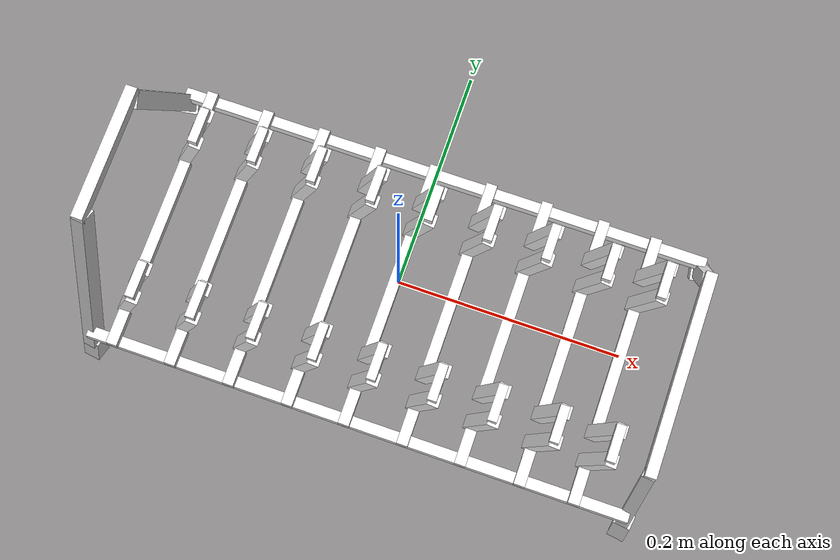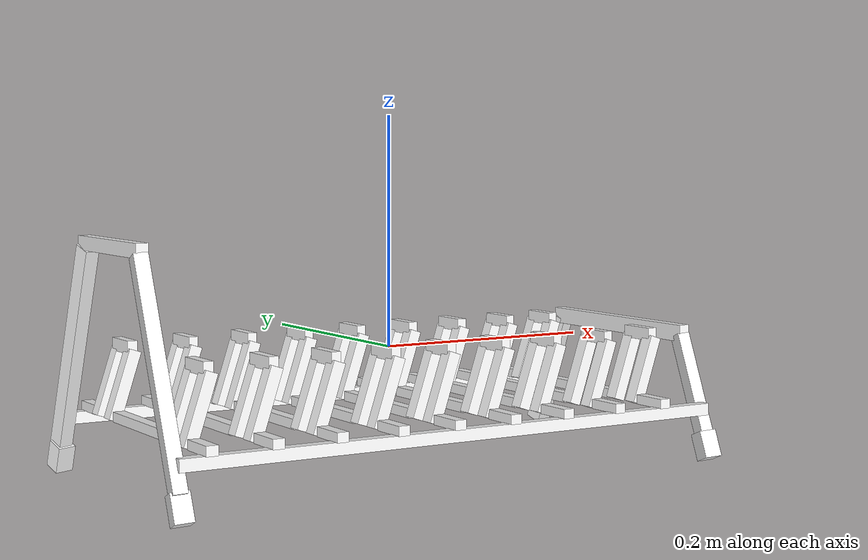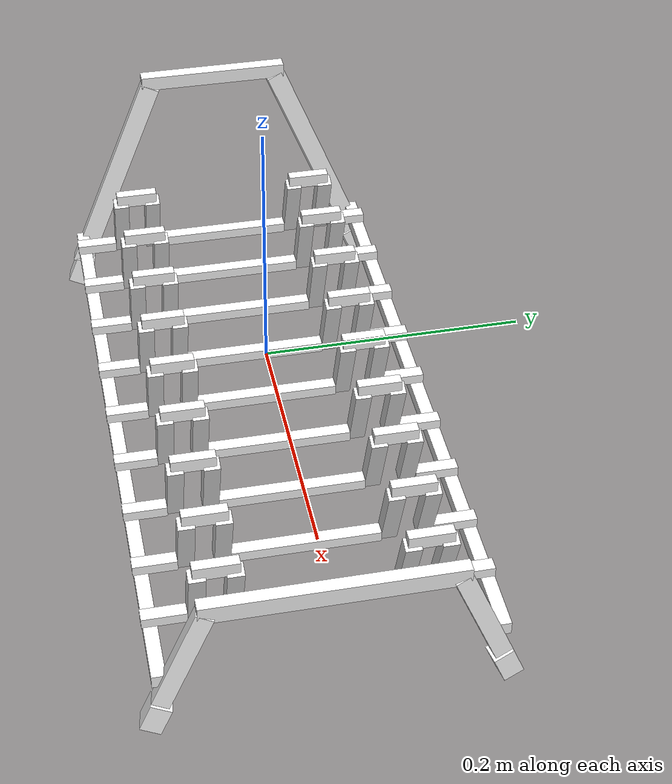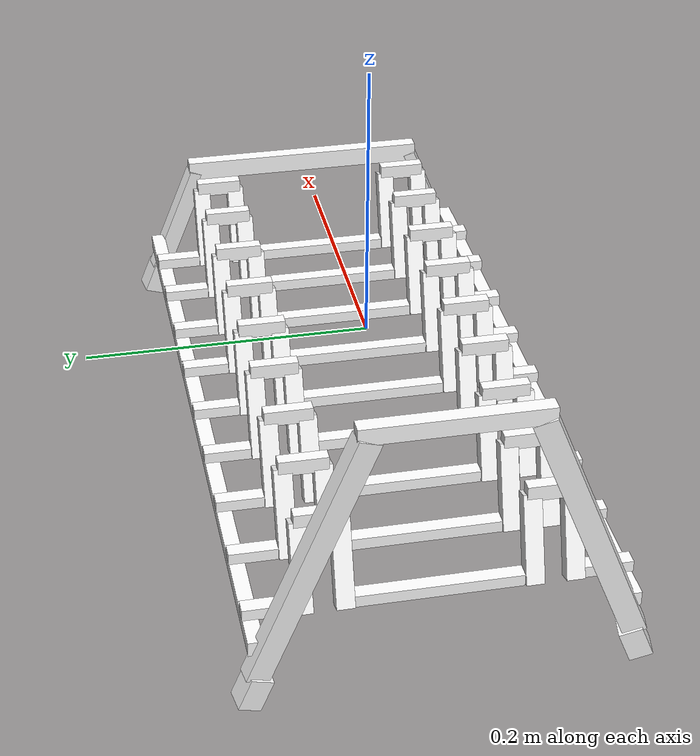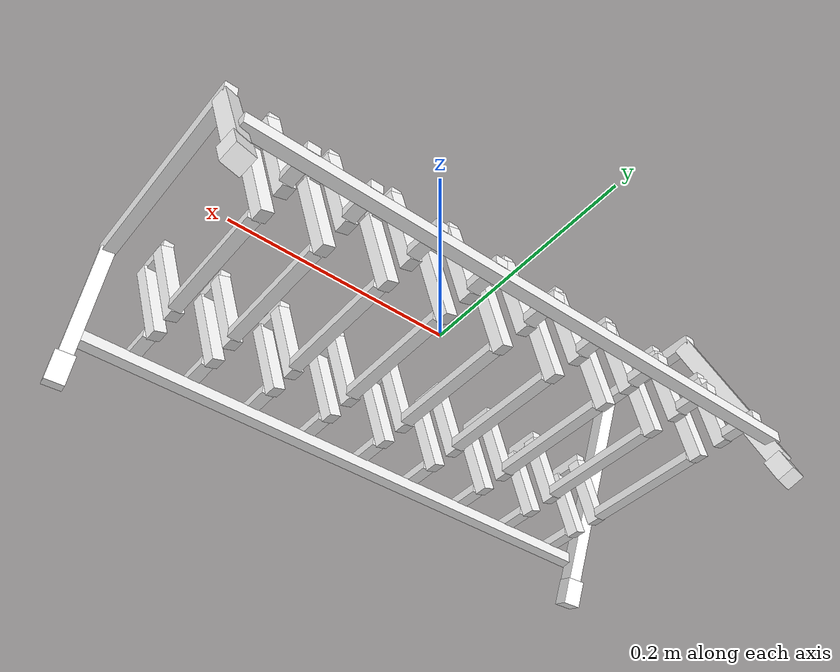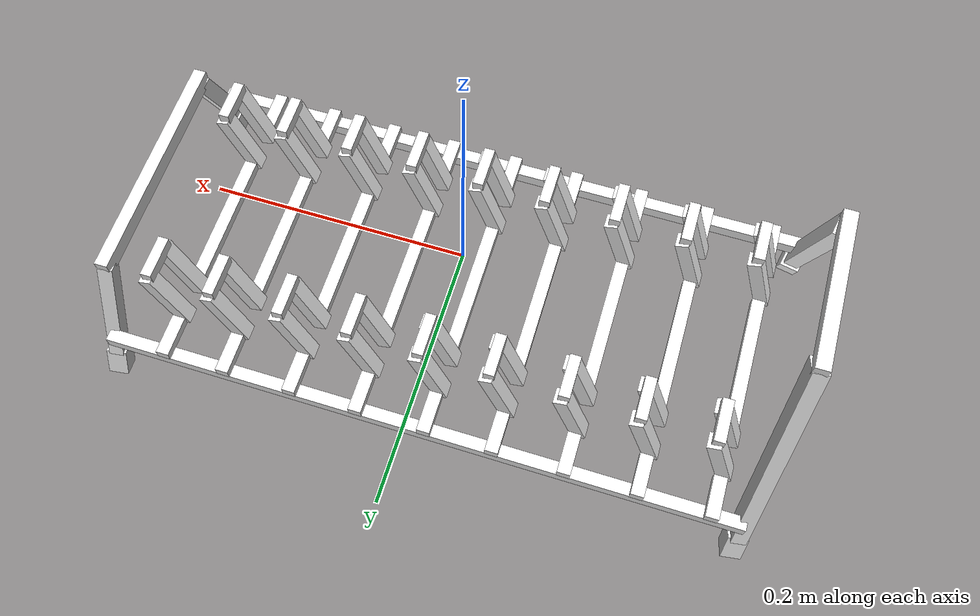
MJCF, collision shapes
<?xml version='1.0' encoding='utf-8'?>
<mujoco model="model">
  <option timestep="0.002" gravity="0.0 0.0 -9.81" />
  <compiler angle="radian" />
  <asset>
    <mesh file="visual/DishRack030.obj" name="DishRack030_vis" />
    <texture file="visual/T_BC001.png" name="DishRack030_material" type="2d" />
    <material name="DishRack030_material" rgba="1 1 1 1.0" texture="DishRack030_material" shininess="0.4472135901451111" specular="0.3103448502657381" />
  </asset>
  <default>
    <default class="visual">
      <geom conaffinity="0" contype="0" group="1" type="mesh" />
    </default>
    <default class="collision">
      <geom group="0" rgba="1 1 1 0.25" density="1.0" solref="0.004 1" solimp="0.998 0.998 0.001" />
    </default>
    <default class="spawn">
      <geom group="0" rgba="1 1 1 0.5" contype="0" conaffinity="0" />
      <site group="0" rgba="1 1 1 0.5" />
    </default>
    <default class="region">
      <geom group="1" conaffinity="0" contype="0" rgba="0 1 0 0" mass="0" />
    </default>
  </default>
  <worldbody>
    <body>
      <body name="object">
        <geom mesh="DishRack030_vis" type="mesh" solimp="0.998 0.998 0.001" solref="0.001 1" friction="0.95 0.3 0.1" class="visual" material="DishRack030_material" />
        <geom type="box" pos="-0.25378570 0.12518905 -0.09148403" size="0.007916887290775776 0.007985206320881844 0.0119932284578681" quat="0.9781383872032166 0.19029957056045532 -0.01601365953683853 0.0823102816939354" class="collision" />
        <geom type="box" pos="-0.25422218 0.08863600 0.00502603" size="0.005984391085803509 0.008014027960598469 0.09362516552209854" quat="0.9781383872032166 0.19029957056045532 -0.01601365953683853 0.0823102816939354" class="collision" />
        <geom type="box" pos="-0.25434777 0.00054217 0.09585953" size="0.005172938574105501 0.060339994728565216 0.005884864833205938" quat="1.0 0.0 0.0 0.0" class="collision" />
        <geom type="box" pos="-0.00001669 0.12246659 -0.05889758" size="0.2549675703048706 0.005172943230718374 0.005196853075176477" quat="1.0 0.0 0.0 0.0" class="collision" />
        <geom type="box" pos="-0.22845045 0.11150206 -0.04992009" size="0.005172938574105501 0.016451986506581306 0.004123777616769075" quat="1.0 0.0 0.0 0.0" class="collision" />
        <geom type="box" pos="-0.22845045 0.00048913 -0.05001092" size="0.005172938574105501 0.05544568598270416 0.004214602056890726" quat="1.0 0.0 0.0 0.0" class="collision" />
        <geom type="box" pos="-0.21435845 0.07522217 0.00659163" size="0.004249385558068752 0.016727598384022713 0.005482289008796215" quat="1.0 0.0 0.0 0.0" class="collision" />
        <geom type="box" pos="-0.22208646 0.08884854 -0.02489956" size="0.005382102448493242 0.0060995458625257015 0.030548080801963806" quat="0.9872633218765259 0.0 0.1590948849916458 0.0" class="collision" />
        <geom type="box" pos="-0.00001669 -0.12080890 -0.05889758" size="0.2549675703048706 0.005172943230718374 0.005196853075176477" quat="1.0 0.0 0.0 0.0" class="collision" />
        <geom type="box" pos="-0.22208646 0.06214127 -0.02489956" size="0.005382102448493242 0.0060995458625257015 0.030548080801963806" quat="0.9872633218765259 0.0 0.1590948849916458 0.0" class="collision" />
        <geom type="box" pos="-0.25422218 -0.08782185 0.00502603" size="0.005984391085803509 0.008014027960598469 0.09362516552209854" quat="0.9781383872032166 -0.19029957056045532 -0.016013650223612785 -0.0823102742433548" class="collision" />
        <geom type="box" pos="-0.25378570 -0.12437491 -0.09148403" size="0.007916887290775776 0.007985206320881844 0.0119932284578681" quat="0.9781383872032166 -0.19029955565929413 -0.016013650223612785 -0.0823102816939354" class="collision" />
        <geom type="box" pos="0.25458512 -0.12437491 -0.09148403" size="0.007916887290775776 0.007985206320881844 0.0119932284578681" quat="0.9781383872032166 -0.19029955565929413 -0.016013650223612785 -0.0823102816939354" class="collision" />
        <geom type="box" pos="0.25414860 -0.10434328 -0.03941492" size="0.005759585183113813 0.006687732879072428 0.04623163118958473" quat="0.9781383872032166 -0.19029957056045532 -0.016013650223612785 -0.0823102742433548" class="collision" />
        <geom type="box" pos="0.25402302 0.00084284 0.00550140" size="0.005172938574105501 0.09368351846933365 0.007361079100519419" quat="1.0 0.0 0.0 0.0" class="collision" />
        <geom type="box" pos="0.25414860 0.10545810 -0.03941493" size="0.005806167609989643 0.006962559651583433 0.04611889645457268" quat="0.9781383872032166 0.19029957056045532 -0.01601365953683853 0.0823102816939354" class="collision" />
        <geom type="box" pos="0.25458512 0.12518905 -0.09148403" size="0.007916887290775776 0.007985206320881844 0.0119932284578681" quat="0.9781383872032166 0.19029957056045532 -0.01601365953683853 0.0823102816939354" class="collision" />
        <geom type="box" pos="-0.22208646 -0.06110779 -0.02489956" size="0.005382102448493242 0.0060995458625257015 0.030548080801963806" quat="0.9872633218765259 0.0 0.1590948849916458 0.0" class="collision" />
        <geom type="box" pos="-0.22208646 -0.08781506 -0.02489956" size="0.005382102448493242 0.0060995458625257015 0.030548080801963806" quat="0.9872633218765259 0.0 0.1590948849916458 0.0" class="collision" />
        <geom type="box" pos="-0.21435845 -0.07418868 0.00659163" size="0.004249385558068752 0.016727598384022713 0.005482289008796215" quat="1.0 0.0 0.0 0.0" class="collision" />
        <geom type="box" pos="-0.22845045 -0.11046857 -0.04992009" size="0.005172938574105501 0.016451986506581306 0.004123777616769075" quat="1.0 0.0 0.0 0.0" class="collision" />
        <geom type="box" pos="-0.17276287 -0.11046857 -0.04992009" size="0.005172938574105501 0.016451986506581306 0.004123777616769075" quat="1.0 0.0 0.0 0.0" class="collision" />
        <geom type="box" pos="-0.15867087 -0.07418868 0.00659163" size="0.004249385558068752 0.016727598384022713 0.005482289008796215" quat="1.0 0.0 0.0 0.0" class="collision" />
        <geom type="box" pos="-0.16639888 -0.08781506 -0.02489956" size="0.005382102448493242 0.0060995458625257015 0.030548080801963806" quat="0.9872633218765259 0.0 0.1590948849916458 0.0" class="collision" />
        <geom type="box" pos="-0.16639888 -0.06110779 -0.02489956" size="0.005382102448493242 0.0060995458625257015 0.030548080801963806" quat="0.9872633218765259 0.0 0.1590948849916458 0.0" class="collision" />
        <geom type="box" pos="-0.16639888 0.06214127 -0.02489956" size="0.005382102448493242 0.0060995458625257015 0.030548080801963806" quat="0.9872633218765259 0.0 0.1590948849916458 0.0" class="collision" />
        <geom type="box" pos="-0.16639888 0.08884854 -0.02489956" size="0.005382102448493242 0.0060995458625257015 0.030548080801963806" quat="0.9872633218765259 0.0 0.1590948849916458 0.0" class="collision" />
        <geom type="box" pos="-0.15867087 0.07522217 0.00659163" size="0.004249385558068752 0.016727598384022713 0.005482289008796215" quat="1.0 0.0 0.0 0.0" class="collision" />
        <geom type="box" pos="-0.17276287 0.00048913 -0.05001092" size="0.005172938574105501 0.05544568598270416 0.004214602056890726" quat="1.0 0.0 0.0 0.0" class="collision" />
        <geom type="box" pos="-0.17276287 0.11150206 -0.04992009" size="0.005172938574105501 0.016451986506581306 0.004123777616769075" quat="1.0 0.0 0.0 0.0" class="collision" />
        <geom type="box" pos="-0.06136299 0.11150206 -0.04992009" size="0.005172938574105501 0.016451986506581306 0.004123777616769075" quat="1.0 0.0 0.0 0.0" class="collision" />
        <geom type="box" pos="-0.06136300 0.00048913 -0.05001092" size="0.005172938574105501 0.05544568598270416 0.004214602056890726" quat="1.0 0.0 0.0 0.0" class="collision" />
        <geom type="box" pos="-0.04727098 0.07522217 0.00659163" size="0.004249385558068752 0.016727598384022713 0.005482289008796215" quat="1.0 0.0 0.0 0.0" class="collision" />
        <geom type="box" pos="-0.05499901 0.08884854 -0.02489956" size="0.005382102448493242 0.0060995458625257015 0.030548080801963806" quat="0.9872633218765259 0.0 0.1590948849916458 0.0" class="collision" />
        <geom type="box" pos="-0.05499901 0.06214127 -0.02489956" size="0.005382102448493242 0.0060995458625257015 0.030548080801963806" quat="0.9872633218765259 0.0 0.1590948849916458 0.0" class="collision" />
        <geom type="box" pos="-0.05499901 -0.06110779 -0.02489956" size="0.005382102448493242 0.0060995458625257015 0.030548080801963806" quat="0.9872633218765259 0.0 0.1590948849916458 0.0" class="collision" />
        <geom type="box" pos="-0.05499901 -0.08781506 -0.02489956" size="0.005382102448493242 0.0060995458625257015 0.030548080801963806" quat="0.9872633218765259 0.0 0.1590948849916458 0.0" class="collision" />
        <geom type="box" pos="-0.04727098 -0.07418868 0.00659163" size="0.004249385558068752 0.016727598384022713 0.005482289008796215" quat="1.0 0.0 0.0 0.0" class="collision" />
        <geom type="box" pos="-0.06136299 -0.11046857 -0.04992009" size="0.005172938574105501 0.016451986506581306 0.004123777616769075" quat="1.0 0.0 0.0 0.0" class="collision" />
        <geom type="box" pos="-0.11705057 -0.11046857 -0.04992009" size="0.005172938574105501 0.016451986506581306 0.004123777616769075" quat="1.0 0.0 0.0 0.0" class="collision" />
        <geom type="box" pos="-0.10295856 -0.07418868 0.00659163" size="0.004249385558068752 0.016727598384022713 0.005482289008796215" quat="1.0 0.0 0.0 0.0" class="collision" />
        <geom type="box" pos="-0.11068659 -0.08781506 -0.02489956" size="0.005382102448493242 0.0060995458625257015 0.030548080801963806" quat="0.9872633218765259 0.0 0.1590948849916458 0.0" class="collision" />
        <geom type="box" pos="-0.11068659 -0.06110779 -0.02489956" size="0.005382102448493242 0.0060995458625257015 0.030548080801963806" quat="0.9872633218765259 0.0 0.1590948849916458 0.0" class="collision" />
        <geom type="box" pos="-0.11068659 0.06214127 -0.02489956" size="0.005382102448493242 0.0060995458625257015 0.030548080801963806" quat="0.9872633218765259 0.0 0.1590948849916458 0.0" class="collision" />
        <geom type="box" pos="-0.11068659 0.08884854 -0.02489956" size="0.005382102448493242 0.0060995458625257015 0.030548080801963806" quat="0.9872633218765259 0.0 0.1590948849916458 0.0" class="collision" />
        <geom type="box" pos="-0.10295856 0.07522217 0.00659163" size="0.004249385558068752 0.016727598384022713 0.005482289008796215" quat="1.0 0.0 0.0 0.0" class="collision" />
        <geom type="box" pos="-0.11705057 0.00048913 -0.05001092" size="0.005172938574105501 0.05544568598270416 0.004214602056890726" quat="1.0 0.0 0.0 0.0" class="collision" />
        <geom type="box" pos="-0.11705057 0.11150206 -0.04992009" size="0.005172938574105501 0.016451986506581306 0.004123777616769075" quat="1.0 0.0 0.0 0.0" class="collision" />
        <geom type="box" pos="0.04681066 0.11150206 -0.04992009" size="0.005172938574105501 0.016451986506581306 0.004123777616769075" quat="1.0 0.0 0.0 0.0" class="collision" />
        <geom type="box" pos="0.04681066 0.00048913 -0.05001092" size="0.005172938574105501 0.05544568598270416 0.004214602056890726" quat="1.0 0.0 0.0 0.0" class="collision" />
        <geom type="box" pos="0.06090267 0.07522217 0.00659163" size="0.004249385558068752 0.016727598384022713 0.005482289008796215" quat="1.0 0.0 0.0 0.0" class="collision" />
        <geom type="box" pos="0.05317465 0.08884854 -0.02489956" size="0.005382102448493242 0.0060995458625257015 0.030548080801963806" quat="0.9872633218765259 0.0 0.1590948849916458 0.0" class="collision" />
        <geom type="box" pos="0.05317465 0.06214127 -0.02489956" size="0.005382102448493242 0.0060995458625257015 0.030548080801963806" quat="0.9872633218765259 0.0 0.1590948849916458 0.0" class="collision" />
        <geom type="box" pos="0.05317465 -0.06110779 -0.02489956" size="0.005382102448493242 0.0060995458625257015 0.030548080801963806" quat="0.9872633218765259 0.0 0.1590948849916458 0.0" class="collision" />
        <geom type="box" pos="0.05317465 -0.08781506 -0.02489956" size="0.005382102448493242 0.0060995458625257015 0.030548080801963806" quat="0.9872633218765259 0.0 0.1590948849916458 0.0" class="collision" />
        <geom type="box" pos="0.06090267 -0.07418868 0.00659163" size="0.004249385558068752 0.016727598384022713 0.005482289008796215" quat="1.0 0.0 0.0 0.0" class="collision" />
        <geom type="box" pos="0.04681066 -0.11046857 -0.04992009" size="0.005172938574105501 0.016451986506581306 0.004123777616769075" quat="1.0 0.0 0.0 0.0" class="collision" />
        <geom type="box" pos="-0.00784314 -0.11046857 -0.04992009" size="0.005172938574105501 0.016451986506581306 0.004123777616769075" quat="1.0 0.0 0.0 0.0" class="collision" />
        <geom type="box" pos="0.00624887 -0.07418868 0.00659163" size="0.004249385558068752 0.016727598384022713 0.005482289008796215" quat="1.0 0.0 0.0 0.0" class="collision" />
        <geom type="box" pos="-0.00147915 -0.08781506 -0.02489956" size="0.005382102448493242 0.0060995458625257015 0.030548080801963806" quat="0.9872633218765259 0.0 0.1590948849916458 0.0" class="collision" />
        <geom type="box" pos="-0.00147915 -0.06110779 -0.02489956" size="0.005382102448493242 0.0060995458625257015 0.030548080801963806" quat="0.9872633218765259 0.0 0.1590948849916458 0.0" class="collision" />
        <geom type="box" pos="-0.00147915 0.06214127 -0.02489956" size="0.005382102448493242 0.0060995458625257015 0.030548080801963806" quat="0.9872633218765259 0.0 0.1590948849916458 0.0" class="collision" />
        <geom type="box" pos="-0.00147915 0.08884854 -0.02489956" size="0.005382102448493242 0.0060995458625257015 0.030548080801963806" quat="0.9872633218765259 0.0 0.1590948849916458 0.0" class="collision" />
        <geom type="box" pos="0.00624887 0.07522217 0.00659163" size="0.004249385558068752 0.016727598384022713 0.005482289008796215" quat="1.0 0.0 0.0 0.0" class="collision" />
        <geom type="box" pos="-0.00784314 0.00048913 -0.05001092" size="0.005172938574105501 0.05544568598270416 0.004214602056890726" quat="1.0 0.0 0.0 0.0" class="collision" />
        <geom type="box" pos="-0.00784314 0.11150206 -0.04992009" size="0.005172938574105501 0.016451986506581306 0.004123777616769075" quat="1.0 0.0 0.0 0.0" class="collision" />
        <geom type="box" pos="0.10049462 0.11150206 -0.04992009" size="0.005172938574105501 0.016451986506581306 0.004123777616769075" quat="1.0 0.0 0.0 0.0" class="collision" />
        <geom type="box" pos="0.10049462 0.00048913 -0.05001092" size="0.005172938574105501 0.05544568598270416 0.004214602056890726" quat="1.0 0.0 0.0 0.0" class="collision" />
        <geom type="box" pos="0.11458663 0.07522217 0.00659163" size="0.004249385558068752 0.016727598384022713 0.005482289008796215" quat="1.0 0.0 0.0 0.0" class="collision" />
        <geom type="box" pos="0.10685860 0.08884854 -0.02489956" size="0.005382102448493242 0.0060995458625257015 0.030548080801963806" quat="0.9872633218765259 0.0 0.1590948849916458 0.0" class="collision" />
        <geom type="box" pos="0.10685860 0.06214127 -0.02489956" size="0.005382102448493242 0.0060995458625257015 0.030548080801963806" quat="0.9872633218765259 0.0 0.1590948849916458 0.0" class="collision" />
        <geom type="box" pos="0.10685860 -0.06110779 -0.02489956" size="0.005382102448493242 0.0060995458625257015 0.030548080801963806" quat="0.9872633218765259 0.0 0.1590948849916458 0.0" class="collision" />
        <geom type="box" pos="0.10685860 -0.08781506 -0.02489956" size="0.005382102448493242 0.0060995458625257015 0.030548080801963806" quat="0.9872633218765259 0.0 0.1590948849916458 0.0" class="collision" />
        <geom type="box" pos="0.11458663 -0.07418868 0.00659163" size="0.004249385558068752 0.016727598384022713 0.005482289008796215" quat="1.0 0.0 0.0 0.0" class="collision" />
        <geom type="box" pos="0.10049462 -0.11046857 -0.04992009" size="0.005172938574105501 0.016451986506581306 0.004123777616769075" quat="1.0 0.0 0.0 0.0" class="collision" />
        <geom type="box" pos="0.15522324 -0.11046857 -0.04992009" size="0.005172938574105501 0.016451986506581306 0.004123777616769075" quat="1.0 0.0 0.0 0.0" class="collision" />
        <geom type="box" pos="0.16931523 -0.07418868 0.00659163" size="0.004249385558068752 0.016727598384022713 0.005482289008796215" quat="1.0 0.0 0.0 0.0" class="collision" />
        <geom type="box" pos="0.16158722 -0.08781506 -0.02489956" size="0.005382102448493242 0.0060995458625257015 0.030548080801963806" quat="0.9872633218765259 0.0 0.1590948849916458 0.0" class="collision" />
        <geom type="box" pos="0.16158722 -0.06110779 -0.02489956" size="0.005382102448493242 0.0060995458625257015 0.030548080801963806" quat="0.9872633218765259 0.0 0.1590948849916458 0.0" class="collision" />
        <geom type="box" pos="0.16158722 0.06214127 -0.02489956" size="0.005382102448493242 0.0060995458625257015 0.030548080801963806" quat="0.9872633218765259 0.0 0.1590948849916458 0.0" class="collision" />
        <geom type="box" pos="0.16158722 0.08884854 -0.02489956" size="0.005382102448493242 0.0060995458625257015 0.030548080801963806" quat="0.9872633218765259 0.0 0.1590948849916458 0.0" class="collision" />
        <geom type="box" pos="0.16931523 0.07522217 0.00659163" size="0.004249385558068752 0.016727598384022713 0.005482289008796215" quat="1.0 0.0 0.0 0.0" class="collision" />
        <geom type="box" pos="0.15522324 0.00048913 -0.05001092" size="0.005172938574105501 0.05544568598270416 0.004214602056890726" quat="1.0 0.0 0.0 0.0" class="collision" />
        <geom type="box" pos="0.15522324 0.11150206 -0.04992009" size="0.005172938574105501 0.016451986506581306 0.004123777616769075" quat="1.0 0.0 0.0 0.0" class="collision" />
        <geom type="box" pos="0.20485485 -0.11046857 -0.04992009" size="0.005172938574105501 0.016451986506581306 0.004123777616769075" quat="1.0 0.0 0.0 0.0" class="collision" />
        <geom type="box" pos="0.21894684 -0.07418868 0.00659163" size="0.004249385558068752 0.016727598384022713 0.005482289008796215" quat="1.0 0.0 0.0 0.0" class="collision" />
        <geom type="box" pos="0.21121883 -0.08781506 -0.02489956" size="0.005382102448493242 0.0060995458625257015 0.030548080801963806" quat="0.9872633218765259 0.0 0.1590948849916458 0.0" class="collision" />
        <geom type="box" pos="0.21121883 -0.06110779 -0.02489956" size="0.005382102448493242 0.0060995458625257015 0.030548080801963806" quat="0.9872633218765259 0.0 0.1590948849916458 0.0" class="collision" />
        <geom type="box" pos="0.21121883 0.06214127 -0.02489956" size="0.005382102448493242 0.0060995458625257015 0.030548080801963806" quat="0.9872633218765259 0.0 0.1590948849916458 0.0" class="collision" />
        <geom type="box" pos="0.21121883 0.08884854 -0.02489956" size="0.005382102448493242 0.0060995458625257015 0.030548080801963806" quat="0.9872633218765259 0.0 0.1590948849916458 0.0" class="collision" />
        <geom type="box" pos="0.21894684 0.07522217 0.00659163" size="0.004249385558068752 0.016727598384022713 0.005482289008796215" quat="1.0 0.0 0.0 0.0" class="collision" />
        <geom type="box" pos="0.20485485 0.00048913 -0.05001092" size="0.005172938574105501 0.05544568598270416 0.004214602056890726" quat="1.0 0.0 0.0 0.0" class="collision" />
        <geom type="box" pos="0.20485485 0.11150206 -0.04992009" size="0.005172938574105501 0.016451986506581306 0.004123777616769075" quat="1.0 0.0 0.0 0.0" class="collision" />
        <geom class="region" name="reg_int_0" type="box" pos="-0.19442016 0.000835820000000001 0.021595810000000003" size="0.015593990000000002 0.12780372 0.07551708" />
        <geom class="region" name="reg_int_1" type="box" pos="-0.13836072 0.000821895000000003 0.021595819999999998" size="0.01559398 0.12781764499999998 0.07551709" />
        <geom class="region" name="reg_int_2" type="box" pos="-0.083164725 0.000821895000000003 0.021595819999999998" size="0.015593995 0.12781764499999998 0.07551709" />
        <geom class="region" name="reg_int_3" type="box" pos="-0.02793737 0.000821895000000003 0.021595819999999998" size="0.015593989999999999 0.12781764499999998 0.07551709" />
        <geom class="region" name="reg_int_4" type="box" pos="0.026029835 0.000821895000000003 0.021595819999999998" size="0.015593995 0.12781764499999998 0.07551709" />
        <geom class="region" name="reg_int_5" type="box" pos="0.080030245 0.000821895000000003 0.021595819999999998" size="0.015593995 0.12781764499999998 0.07551709" />
        <geom class="region" name="reg_int_6" type="box" pos="0.13403065 0.000821895000000003 0.021595819999999998" size="0.015593990000000002 0.12781764499999998 0.07551709" />
        <geom class="region" name="reg_int_7" type="box" pos="0.18679119500000002 0.000821895000000003 0.021595819999999998" size="0.013402084999999994 0.12781764499999998 0.07551709" />
        <geom class="region" name="reg_int_8" type="box" pos="0.235278655 0.000821895000000003 0.021595819999999998" size="0.01273787500000001 0.12781764499999998 0.07551709" />
        <geom size="0.26366813 0.13560075 0.10546725" pos="0.0 0.0 -0.0" name="reg_bbox" class="region" type="box" quat="1.0 0.0 0.0 0.0" />
        </body>
    </body>
  </worldbody>
  <actuator />
</mujoco>
